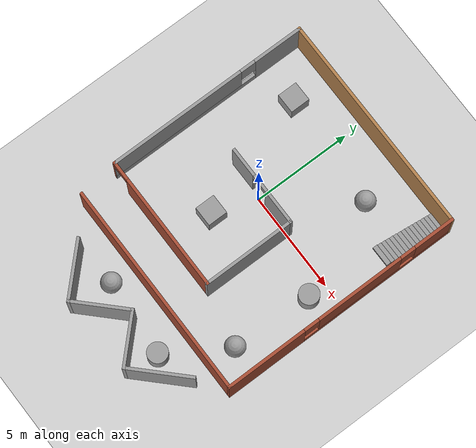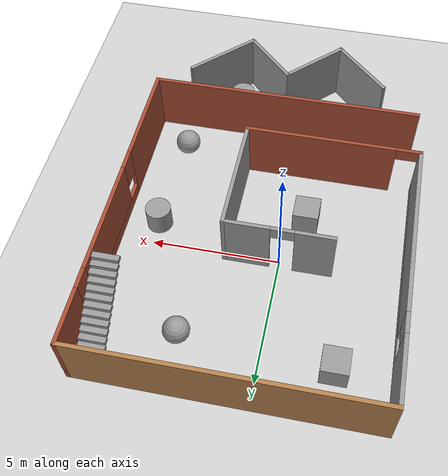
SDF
<sdf version="1.7">
 <world name="default">
  <light name="sun" type="directional">
   <pose>0 0 10 0 -0 0</pose>
   <diffuse>0.8 0.8 0.8 1</diffuse>
   <specular>0.2 0.2 0.2 1</specular>
   <attenuation>
    <range>1000</range>
    <constant>0.9</constant>
    <linear>0.01</linear>
    <quadratic>0.001</quadratic>
   </attenuation>
   <direction>-0.5 0.1 -0.9</direction>
   <spot><inner_angle>0</inner_angle><outer_angle>0</outer_angle><falloff>0</falloff></spot>
  </light>
  <model name="ground_plane">
   <static>1</static>
   <link name="link">
    <collision name="collision">
     <geometry><plane><normal>0 0 1</normal><size>100 100</size></plane></geometry>
     <surface>
      <contact><collide_bitmask>65535</collide_bitmask></contact>
      <friction><ode><mu>100</mu><mu2>50</mu2></ode></friction>
     </surface>
    </collision>
    <visual name="visual">
     <cast_shadows>0</cast_shadows>
     <geometry><plane><normal>0 0 1</normal><size>100 100</size></plane></geometry>
     <material>
      <script><uri>file://media/materials/scripts/gazebo.material</uri><name>Gazebo/Grey</name></script>
     </material>
    </visual>
   </link>
  </model>
  <gravity>0 0 -9.8</gravity>
  <magnetic_field>6e-06 2.3e-05 -4.2e-05</magnetic_field>
  <atmosphere type="adiabatic"/>
  <physics type="ode">
   <max_step_size>0.001</max_step_size>
   <real_time_factor>1</real_time_factor>
   <real_time_update_rate>1000</real_time_update_rate>
  </physics>
  <scene><ambient>0.4 0.4 0.4 1</ambient><background>0.7 0.7 0.7 1</background><shadows>1</shadows></scene>
  <spherical_coordinates>
   <surface_model>EARTH_WGS84</surface_model>
   <latitude_deg>0</latitude_deg>
   <longitude_deg>0</longitude_deg>
   <elevation>0</elevation>
   <heading_deg>0</heading_deg>
  </spherical_coordinates>
  <model name="room2">
   <pose>0.81 -1.94942 0 0 -0 0</pose>
   <link name="Stairs_0">
    <visual name="Stairs_0_Visual_0">
     <pose>4.94342 7.65865 0.083333 0 -0 0</pose>
     <geometry><box><size>1 0.233333 0.166667</size></box></geometry>
     <material>
      <script><uri>file://media/materials/scripts/gazebo.material</uri><name>Gazebo/Grey</name></script>
      <ambient>1 1 1 1</ambient>
     </material>
     <meta><layer>0</layer></meta>
    </visual>
    <collision name="Stairs_0_Collision_0">
     <geometry><box><size>1 0.233333 0.166667</size></box></geometry>
     <pose>4.94342 7.65865 0.083333 0 -0 0</pose>
    </collision>
    <visual name="Stairs_0_Visual_1">
     <pose>4.94342 7.42532 0.25 0 -0 0</pose>
     <geometry><box><size>1 0.233333 0.166667</size></box></geometry>
     <material>
      <script><uri>file://media/materials/scripts/gazebo.material</uri><name>Gazebo/Grey</name></script>
      <ambient>1 1 1 1</ambient>
     </material>
     <meta><layer>0</layer></meta>
    </visual>
    <collision name="Stairs_0_Collision_1">
     <geometry><box><size>1 0.233333 0.166667</size></box></geometry>
     <pose>4.94342 7.42532 0.25 0 -0 0</pose>
    </collision>
    <visual name="Stairs_0_Visual_2">
     <pose>4.94342 7.19199 0.416667 0 -0 0</pose>
     <geometry><box><size>1 0.233333 0.166667</size></box></geometry>
     <material>
      <script><uri>file://media/materials/scripts/gazebo.material</uri><name>Gazebo/Grey</name></script>
      <ambient>1 1 1 1</ambient>
     </material>
     <meta><layer>0</layer></meta>
    </visual>
    <collision name="Stairs_0_Collision_2">
     <geometry><box><size>1 0.233333 0.166667</size></box></geometry>
     <pose>4.94342 7.19199 0.416667 0 -0 0</pose>
    </collision>
    <visual name="Stairs_0_Visual_3">
     <pose>4.94342 6.95865 0.583333 0 -0 0</pose>
     <geometry><box><size>1 0.233333 0.166667</size></box></geometry>
     <material>
      <script><uri>file://media/materials/scripts/gazebo.material</uri><name>Gazebo/Grey</name></script>
      <ambient>1 1 1 1</ambient>
     </material>
     <meta><layer>0</layer></meta>
    </visual>
    <collision name="Stairs_0_Collision_3">
     <geometry><box><size>1 0.233333 0.166667</size></box></geometry>
     <pose>4.94342 6.95865 0.583333 0 -0 0</pose>
    </collision>
    <visual name="Stairs_0_Visual_4">
     <pose>4.94342 6.72532 0.75 0 -0 0</pose>
     <geometry><box><size>1 0.233333 0.166667</size></box></geometry>
     <material>
      <script><uri>file://media/materials/scripts/gazebo.material</uri><name>Gazebo/Grey</name></script>
      <ambient>1 1 1 1</ambient>
     </material>
     <meta><layer>0</layer></meta>
    </visual>
    <collision name="Stairs_0_Collision_4">
     <geometry><box><size>1 0.233333 0.166667</size></box></geometry>
     <pose>4.94342 6.72532 0.75 0 -0 0</pose>
    </collision>
    <visual name="Stairs_0_Visual_5">
     <pose>4.94342 6.49199 0.916667 0 -0 0</pose>
     <geometry><box><size>1 0.233333 0.166667</size></box></geometry>
     <material>
      <script><uri>file://media/materials/scripts/gazebo.material</uri><name>Gazebo/Grey</name></script>
      <ambient>1 1 1 1</ambient>
     </material>
     <meta><layer>0</layer></meta>
    </visual>
    <collision name="Stairs_0_Collision_5">
     <geometry><box><size>1 0.233333 0.166667</size></box></geometry>
     <pose>4.94342 6.49199 0.916667 0 -0 0</pose>
    </collision>
    <visual name="Stairs_0_Visual_6">
     <pose>4.94342 6.25865 1.08333 0 -0 0</pose>
     <geometry><box><size>1 0.233333 0.166667</size></box></geometry>
     <material>
      <script><uri>file://media/materials/scripts/gazebo.material</uri><name>Gazebo/Grey</name></script>
      <ambient>1 1 1 1</ambient>
     </material>
     <meta><layer>0</layer></meta>
    </visual>
    <collision name="Stairs_0_Collision_6">
     <geometry><box><size>1 0.233333 0.166667</size></box></geometry>
     <pose>4.94342 6.25865 1.08333 0 -0 0</pose>
    </collision>
    <visual name="Stairs_0_Visual_7">
     <pose>4.94342 6.02532 1.25 0 -0 0</pose>
     <geometry><box><size>1 0.233333 0.166667</size></box></geometry>
     <material>
      <script><uri>file://media/materials/scripts/gazebo.material</uri><name>Gazebo/Grey</name></script>
      <ambient>1 1 1 1</ambient>
     </material>
     <meta><layer>0</layer></meta>
    </visual>
    <collision name="Stairs_0_Collision_7">
     <geometry><box><size>1 0.233333 0.166667</size></box></geometry>
     <pose>4.94342 6.02532 1.25 0 -0 0</pose>
    </collision>
    <visual name="Stairs_0_Visual_8">
     <pose>4.94342 5.79199 1.41667 0 -0 0</pose>
     <geometry><box><size>1 0.233333 0.166667</size></box></geometry>
     <material>
      <script><uri>file://media/materials/scripts/gazebo.material</uri><name>Gazebo/Grey</name></script>
      <ambient>1 1 1 1</ambient>
     </material>
     <meta><layer>0</layer></meta>
    </visual>
    <collision name="Stairs_0_Collision_8">
     <geometry><box><size>1 0.233333 0.166667</size></box></geometry>
     <pose>4.94342 5.79199 1.41667 0 -0 0</pose>
    </collision>
    <visual name="Stairs_0_Visual_9">
     <pose>4.94342 5.55865 1.58333 0 -0 0</pose>
     <geometry><box><size>1 0.233333 0.166667</size></box></geometry>
     <material>
      <script><uri>file://media/materials/scripts/gazebo.material</uri><name>Gazebo/Grey</name></script>
      <ambient>1 1 1 1</ambient>
     </material>
     <meta><layer>0</layer></meta>
    </visual>
    <collision name="Stairs_0_Collision_9">
     <geometry><box><size>1 0.233333 0.166667</size></box></geometry>
     <pose>4.94342 5.55865 1.58333 0 -0 0</pose>
    </collision>
    <visual name="Stairs_0_Visual_10">
     <pose>4.94342 5.32532 1.75 0 -0 0</pose>
     <geometry><box><size>1 0.233333 0.166667</size></box></geometry>
     <material>
      <script><uri>file://media/materials/scripts/gazebo.material</uri><name>Gazebo/Grey</name></script>
      <ambient>1 1 1 1</ambient>
     </material>
     <meta><layer>0</layer></meta>
    </visual>
    <collision name="Stairs_0_Collision_10">
     <geometry><box><size>1 0.233333 0.166667</size></box></geometry>
     <pose>4.94342 5.32532 1.75 0 -0 0</pose>
    </collision>
    <visual name="Stairs_0_Visual_11">
     <pose>4.94342 5.09199 1.91667 0 -0 0</pose>
     <geometry><box><size>1 0.233333 0.166667</size></box></geometry>
     <material>
      <script><uri>file://media/materials/scripts/gazebo.material</uri><name>Gazebo/Grey</name></script>
      <ambient>1 1 1 1</ambient>
     </material>
     <meta><layer>0</layer></meta>
    </visual>
    <collision name="Stairs_0_Collision_11">
     <geometry><box><size>1 0.233333 0.166667</size></box></geometry>
     <pose>4.94342 5.09199 1.91667 0 -0 0</pose>
    </collision>
    <visual name="Stairs_0_Visual_12">
     <pose>4.94342 4.85865 2.08333 0 -0 0</pose>
     <geometry><box><size>1 0.233333 0.166667</size></box></geometry>
     <material>
      <script><uri>file://media/materials/scripts/gazebo.material</uri><name>Gazebo/Grey</name></script>
      <ambient>1 1 1 1</ambient>
     </material>
     <meta><layer>0</layer></meta>
    </visual>
    <collision name="Stairs_0_Collision_12">
     <geometry><box><size>1 0.233333 0.166667</size></box></geometry>
     <pose>4.94342 4.85865 2.08333 0 -0 0</pose>
    </collision>
    <visual name="Stairs_0_Visual_13">
     <pose>4.94342 4.62532 2.25 0 -0 0</pose>
     <geometry><box><size>1 0.233333 0.166667</size></box></geometry>
     <material>
      <script><uri>file://media/materials/scripts/gazebo.material</uri><name>Gazebo/Grey</name></script>
      <ambient>1 1 1 1</ambient>
     </material>
     <meta><layer>0</layer></meta>
    </visual>
    <collision name="Stairs_0_Collision_13">
     <geometry><box><size>1 0.233333 0.166667</size></box></geometry>
     <pose>4.94342 4.62532 2.25 0 -0 0</pose>
    </collision>
    <visual name="Stairs_0_Visual_14">
     <pose>4.94342 4.39199 2.41667 0 -0 0</pose>
     <geometry><box><size>1 0.233333 0.166667</size></box></geometry>
     <material>
      <script><uri>file://media/materials/scripts/gazebo.material</uri><name>Gazebo/Grey</name></script>
      <ambient>1 1 1 1</ambient>
     </material>
     <meta><layer>0</layer></meta>
    </visual>
    <collision name="Stairs_0_Collision_14">
     <geometry><box><size>1 0.233333 0.166667</size></box></geometry>
     <pose>4.94342 4.39199 2.41667 0 -0 0</pose>
    </collision>
   </link>
   <link name="Wall_11">
    <collision name="Wall_11_Collision">
     <geometry><box><size>3 0.15 2.5</size></box></geometry>
     <pose>0 0 1.25 0 -0 0</pose>
    </collision>
    <visual name="Wall_11_Visual">
     <pose>0 0 1.25 0 -0 0</pose>
     <geometry><box><size>3 0.15 2.5</size></box></geometry>
     <material>
      <script><uri>file://media/materials/scripts/gazebo.material</uri><name>Gazebo/Grey</name></script>
      <ambient>1 1 1 1</ambient>
     </material>
     <meta><layer>0</layer></meta>
    </visual>
    <pose>-2.76716 -6.82073 0 0 -0 -0.785398</pose>
   </link>
   <link name="Wall_12">
    <collision name="Wall_12_Collision">
     <geometry><box><size>3 0.15 2.5</size></box></geometry>
     <pose>0 0 1.25 0 -0 0</pose>
    </collision>
    <visual name="Wall_12_Visual">
     <pose>0 0 1.25 0 -0 0</pose>
     <geometry><box><size>3 0.15 2.5</size></box></geometry>
     <material>
      <script><uri>file://media/materials/scripts/gazebo.material</uri><name>Gazebo/Grey</name></script>
      <ambient>1 1 1 1</ambient>
     </material>
     <meta><layer>0</layer></meta>
    </visual>
    <pose>-0.75191 -6.82073 0 0 -0 0.785398</pose>
   </link>
   <link name="Wall_13">
    <collision name="Wall_13_Collision">
     <geometry><box><size>2.75 0.15 2.5</size></box></geometry>
     <pose>0 0 1.25 0 -0 0</pose>
    </collision>
    <visual name="Wall_13_Visual">
     <pose>0 0 1.25 0 -0 0</pose>
     <geometry><box><size>2.75 0.15 2.5</size></box></geometry>
     <material>
      <script><uri>file://media/materials/scripts/gazebo.material</uri><name>Gazebo/Grey</name></script>
      <ambient>1 1 1 1</ambient>
     </material>
     <meta><layer>0</layer></meta>
    </visual>
    <pose>1.17496 -6.73234 0 0 -0 -0.785398</pose>
   </link>
   <link name="Wall_14">
    <collision name="Wall_14_Collision">
     <geometry><box><size>3.25 0.15 2.5</size></box></geometry>
     <pose>0 0 1.25 0 -0 0</pose>
    </collision>
    <visual name="Wall_14_Visual">
     <pose>0 0 1.25 0 -0 0</pose>
     <geometry><box><size>3.25 0.15 2.5</size></box></geometry>
     <material>
      <script><uri>file://media/materials/scripts/gazebo.material</uri><name>Gazebo/Grey</name></script>
      <ambient>1 1 1 1</ambient>
     </material>
     <meta><layer>0</layer></meta>
    </visual>
    <pose>3.19021 -6.55556 0 0 -0 0.785398</pose>
   </link>
   <link name="Wall_2">
    <collision name="Wall_2_Collision">
     <geometry><box><size>11 0.15 2.5</size></box></geometry>
     <pose>0 0 1.25 0 -0 0</pose>
    </collision>
    <visual name="Wall_2_Visual">
     <pose>0 0 1.25 0 -0 0</pose>
     <geometry><box><size>11 0.15 2.5</size></box></geometry>
     <material>
      <script><uri>file://media/materials/scripts/gazebo.material</uri><name>Gazebo/Bricks</name></script>
      <ambient>1 1 1 1</ambient>
     </material>
     <meta><layer>0</layer></meta>
    </visual>
    <pose>0.125 -4.49058 0 0 -0 0</pose>
   </link>
   <link name="Wall_3">
    <pose>5.55 1.68442 0 0 -0 1.5708</pose>
    <visual name="Wall_3_Visual_0">
     <pose>-4.15239 0 1.25 0 -0 0</pose>
     <geometry><box><size>4.19522 0.15 2.5</size></box></geometry>
     <material>
      <script><uri>file://media/materials/scripts/gazebo.material</uri><name>Gazebo/Bricks</name></script>
      <ambient>1 1 1 1</ambient>
     </material>
     <meta><layer>0</layer></meta>
    </visual>
    <collision name="Wall_3_Collision_0">
     <geometry><box><size>4.19522 0.15 2.5</size></box></geometry>
     <pose>-4.15239 0 1.25 0 -0 0</pose>
    </collision>
    <visual name="Wall_3_Visual_1">
     <pose>2.09761 0 0.25 0 -0 0</pose>
     <geometry><box><size>8.30479 0.15 0.5</size></box></geometry>
     <material>
      <script><uri>file://media/materials/scripts/gazebo.material</uri><name>Gazebo/Bricks</name></script>
      <ambient>1 1 1 1</ambient>
     </material>
     <meta><layer>0</layer></meta>
    </visual>
    <collision name="Wall_3_Collision_1">
     <geometry><box><size>8.30479 0.15 0.5</size></box></geometry>
     <pose>2.09761 0 0.25 0 -0 0</pose>
    </collision>
    <visual name="Wall_3_Visual_2">
     <pose>1.02186 0 1.5 0 -0 0</pose>
     <geometry><box><size>4.55329 0.15 2</size></box></geometry>
     <material>
      <script><uri>file://media/materials/scripts/gazebo.material</uri><name>Gazebo/Bricks</name></script>
      <ambient>1 1 1 1</ambient>
     </material>
     <meta><layer>0</layer></meta>
    </visual>
    <collision name="Wall_3_Collision_2">
     <geometry><box><size>4.55329 0.15 2</size></box></geometry>
     <pose>1.02186 0 1.5 0 -0 0</pose>
    </collision>
    <visual name="Wall_3_Visual_3">
     <pose>5.17425 0 1.5 0 -0 0</pose>
     <geometry><box><size>2.1515 0.15 2</size></box></geometry>
     <material>
      <script><uri>file://media/materials/scripts/gazebo.material</uri><name>Gazebo/Bricks</name></script>
      <ambient>1 1 1 1</ambient>
     </material>
     <meta><layer>0</layer></meta>
    </visual>
    <collision name="Wall_3_Collision_3">
     <geometry><box><size>2.1515 0.15 2</size></box></geometry>
     <pose>5.17425 0 1.5 0 -0 0</pose>
    </collision>
    <visual name="Wall_3_Visual_4">
     <pose>-1.65478 0 1.9 0 -0 0</pose>
     <geometry><box><size>0.8 0.15 1.2</size></box></geometry>
     <material>
      <script><uri>file://media/materials/scripts/gazebo.material</uri><name>Gazebo/Bricks</name></script>
      <ambient>1 1 1 1</ambient>
     </material>
     <meta><layer>0</layer></meta>
    </visual>
    <collision name="Wall_3_Collision_4">
     <geometry><box><size>0.8 0.15 1.2</size></box></geometry>
     <pose>-1.65478 0 1.9 0 -0 0</pose>
    </collision>
    <visual name="Wall_3_Visual_5">
     <pose>3.6985 0 1.9 0 -0 0</pose>
     <geometry><box><size>0.8 0.15 1.2</size></box></geometry>
     <material>
      <script><uri>file://media/materials/scripts/gazebo.material</uri><name>Gazebo/Bricks</name></script>
      <ambient>1 1 1 1</ambient>
     </material>
     <meta><layer>0</layer></meta>
    </visual>
    <collision name="Wall_3_Collision_5">
     <geometry><box><size>0.8 0.15 1.2</size></box></geometry>
     <pose>3.6985 0 1.9 0 -0 0</pose>
    </collision>
   </link>
   <link name="Wall_4">
    <collision name="Wall_4_Collision">
     <geometry><box><size>11.25 0.15 2.5</size></box></geometry>
     <pose>0 0 1.25 0 -0 0</pose>
    </collision>
    <visual name="Wall_4_Visual">
     <pose>0 0 1.25 0 -0 0</pose>
     <geometry><box><size>11.25 0.15 2.5</size></box></geometry>
     <material>
      <script><uri>file://media/materials/scripts/gazebo.material</uri><name>Gazebo/Wood</name></script>
      <ambient>1 1 1 1</ambient>
     </material>
     <meta><layer>0</layer></meta>
    </visual>
    <pose>-0 7.85942 0 0 -0 3.14159</pose>
   </link>
   <link name="Wall_5">
    <pose>-5.55 2.68442 0 0 -0 -1.5708</pose>
    <visual name="Wall_5_Visual_0">
     <pose>-3.94483 0 1.25 0 -0 0</pose>
     <geometry><box><size>2.61035 0.15 2.5</size></box></geometry>
     <material>
      <script><uri>file://media/materials/scripts/gazebo.material</uri><name>Gazebo/Grey</name></script>
      <ambient>1 1 1 1</ambient>
     </material>
     <meta><layer>0</layer></meta>
    </visual>
    <collision name="Wall_5_Collision_0">
     <geometry><box><size>2.61035 0.15 2.5</size></box></geometry>
     <pose>-3.94483 0 1.25 0 -0 0</pose>
    </collision>
    <visual name="Wall_5_Visual_1">
     <pose>1.30517 0 0.25 0 -0 0</pose>
     <geometry><box><size>7.88965 0.15 0.5</size></box></geometry>
     <material>
      <script><uri>file://media/materials/scripts/gazebo.material</uri><name>Gazebo/Grey</name></script>
      <ambient>1 1 1 1</ambient>
     </material>
     <meta><layer>0</layer></meta>
    </visual>
    <collision name="Wall_5_Collision_1">
     <geometry><box><size>7.88965 0.15 0.5</size></box></geometry>
     <pose>1.30517 0 0.25 0 -0 0</pose>
    </collision>
    <visual name="Wall_5_Visual_2">
     <pose>1.70517 0 1.5 0 -0 0</pose>
     <geometry><box><size>7.08965 0.15 2</size></box></geometry>
     <material>
      <script><uri>file://media/materials/scripts/gazebo.material</uri><name>Gazebo/Grey</name></script>
      <ambient>1 1 1 1</ambient>
     </material>
     <meta><layer>0</layer></meta>
    </visual>
    <collision name="Wall_5_Collision_2">
     <geometry><box><size>7.08965 0.15 2</size></box></geometry>
     <pose>1.70517 0 1.5 0 -0 0</pose>
    </collision>
    <visual name="Wall_5_Visual_3">
     <pose>-2.23965 0 1.9 0 -0 0</pose>
     <geometry><box><size>0.8 0.15 1.2</size></box></geometry>
     <material>
      <script><uri>file://media/materials/scripts/gazebo.material</uri><name>Gazebo/Grey</name></script>
      <ambient>1 1 1 1</ambient>
     </material>
     <meta><layer>0</layer></meta>
    </visual>
    <collision name="Wall_5_Collision_3">
     <geometry><box><size>0.8 0.15 1.2</size></box></geometry>
     <pose>-2.23965 0 1.9 0 -0 0</pose>
    </collision>
   </link>
   <link name="Wall_6">
    <pose>-2.125 -2.49058 0 0 -0 0</pose>
    <visual name="Wall_6_Visual_0">
     <pose>-3.44229 0 1.25 0 -0 0</pose>
     <geometry><box><size>0.11542 0.15 2.5</size></box></geometry>
     <material>
      <script><uri>file://media/materials/scripts/gazebo.material</uri><name>Gazebo/Bricks</name></script>
      <ambient>1 1 1 1</ambient>
     </material>
     <meta><layer>0</layer></meta>
    </visual>
    <collision name="Wall_6_Collision_0">
     <geometry><box><size>0.11542 0.15 2.5</size></box></geometry>
     <pose>-3.44229 0 1.25 0 -0 0</pose>
    </collision>
    <visual name="Wall_6_Visual_1">
     <pose>0.50771 0 1.25 0 -0 0</pose>
     <geometry><box><size>5.98458 0.15 2.5</size></box></geometry>
     <material>
      <script><uri>file://media/materials/scripts/gazebo.material</uri><name>Gazebo/Bricks</name></script>
      <ambient>1 1 1 1</ambient>
     </material>
     <meta><layer>0</layer></meta>
    </visual>
    <collision name="Wall_6_Collision_1">
     <geometry><box><size>5.98458 0.15 2.5</size></box></geometry>
     <pose>0.50771 0 1.25 0 -0 0</pose>
    </collision>
    <visual name="Wall_6_Visual_2">
     <pose>-2.93458 0 2.25 0 -0 0</pose>
     <geometry><box><size>0.9 0.15 0.5</size></box></geometry>
     <material>
      <script><uri>file://media/materials/scripts/gazebo.material</uri><name>Gazebo/Bricks</name></script>
      <ambient>1 1 1 1</ambient>
     </material>
     <meta><layer>0</layer></meta>
    </visual>
    <collision name="Wall_6_Collision_2">
     <geometry><box><size>0.9 0.15 0.5</size></box></geometry>
     <pose>-2.93458 0 2.25 0 -0 0</pose>
    </collision>
   </link>
   <link name="Wall_7">
    <collision name="Wall_7_Collision">
     <geometry><box><size>4.75 0.15 2.5</size></box></geometry>
     <pose>0 0 1.25 0 -0 0</pose>
    </collision>
    <visual name="Wall_7_Visual">
     <pose>0 0 1.25 0 -0 0</pose>
     <geometry><box><size>4.75 0.15 2.5</size></box></geometry>
     <material>
      <script><uri>file://media/materials/scripts/gazebo.material</uri><name>Gazebo/Grey</name></script>
      <ambient>1 1 1 1</ambient>
     </material>
     <meta><layer>0</layer></meta>
    </visual>
    <pose>1.3 -0.190581 0 0 -0 1.5708</pose>
   </link>
   <link name="Wall_8">
    <pose>-0.75 2.10942 0 0 -0 3.14159</pose>
    <visual name="Wall_8_Visual_0">
     <pose>-1.21284 0 1.25 0 -0 0</pose>
     <geometry><box><size>1.82431 0.15 2.5</size></box></geometry>
     <material>
      <script><uri>file://media/materials/scripts/gazebo.material</uri><name>Gazebo/Grey</name></script>
      <ambient>1 1 1 1</ambient>
     </material>
     <meta><layer>0</layer></meta>
    </visual>
    <collision name="Wall_8_Collision_0">
     <geometry><box><size>1.82431 0.15 2.5</size></box></geometry>
     <pose>-1.21284 0 1.25 0 -0 0</pose>
    </collision>
    <visual name="Wall_8_Visual_1">
     <pose>1.36216 0 1.25 0 -0 0</pose>
     <geometry><box><size>1.52569 0.15 2.5</size></box></geometry>
     <material>
      <script><uri>file://media/materials/scripts/gazebo.material</uri><name>Gazebo/Grey</name></script>
      <ambient>1 1 1 1</ambient>
     </material>
     <meta><layer>0</layer></meta>
    </visual>
    <collision name="Wall_8_Collision_1">
     <geometry><box><size>1.52569 0.15 2.5</size></box></geometry>
     <pose>1.36216 0 1.25 0 -0 0</pose>
    </collision>
    <visual name="Wall_8_Visual_2">
     <pose>0.149309 0 2.25 0 -0 0</pose>
     <geometry><box><size>0.9 0.15 0.5</size></box></geometry>
     <material>
      <script><uri>file://media/materials/scripts/gazebo.material</uri><name>Gazebo/Grey</name></script>
      <ambient>1 1 1 1</ambient>
     </material>
     <meta><layer>0</layer></meta>
    </visual>
    <collision name="Wall_8_Collision_2">
     <geometry><box><size>0.9 0.15 0.5</size></box></geometry>
     <pose>0.149309 0 2.25 0 -0 0</pose>
    </collision>
   </link>
   <static>1</static>
  </model>
  <model name="unit_sphere">
   <pose>3.05854 3.74886 0.5 0 -0 0</pose>
   <link name="link">
    <inertial>
     <mass>1</mass>
     <inertia><ixx>0.1</ixx><ixy>0</ixy><ixz>0</ixz><iyy>0.1</iyy><iyz>0</iyz><izz>0.1</izz></inertia>
    </inertial>
    <collision name="collision"><geometry><sphere><radius>0.5</radius></sphere></geometry></collision>
    <visual name="visual">
     <geometry><sphere><radius>0.5</radius></sphere></geometry>
     <material>
      <script><name>Gazebo/Grey</name><uri>file://media/materials/scripts/gazebo.material</uri></script>
     </material>
    </visual>
   </link>
  </model>
  <model name="unit_cylinder">
   <pose>4.99406 -0.963097 0.499998 3e-06 -4e-06 0</pose>
   <link name="link">
    <inertial>
     <mass>1</mass>
     <inertia><ixx>0.145833</ixx><ixy>0</ixy><ixz>0</ixz><iyy>0.145833</iyy><iyz>0</iyz><izz>0.125</izz></inertia>
    </inertial>
    <collision name="collision">
     <geometry><cylinder><radius>0.5</radius><length>1</length></cylinder></geometry>
    </collision>
    <visual name="visual">
     <geometry><cylinder><radius>0.5</radius><length>1</length></cylinder></geometry>
     <material>
      <script><name>Gazebo/Grey</name><uri>file://media/materials/scripts/gazebo.material</uri></script>
     </material>
    </visual>
   </link>
  </model>
  <model name="unit_box">
   <pose>-0.714525 -2.12479 0.499995 0 1e-05 0</pose>
   <link name="link">
    <inertial>
     <mass>1</mass>
     <inertia>
      <ixx>0.166667</ixx>
      <ixy>0</ixy>
      <ixz>0</ixz>
      <iyy>0.166667</iyy>
      <iyz>0</iyz>
      <izz>0.166667</izz>
     </inertia>
    </inertial>
    <collision name="collision"><geometry><box><size>1 1 1</size></box></geometry></collision>
    <visual name="visual">
     <geometry><box><size>1 1 1</size></box></geometry>
     <material>
      <script><name>Gazebo/Grey</name><uri>file://media/materials/scripts/gazebo.material</uri></script>
     </material>
    </visual>
   </link>
  </model>
  <model name="unit_box_0">
   <pose>-2.65964 4.03494 0.499995 -1e-05 -0 -0</pose>
   <link name="link">
    <inertial>
     <mass>1</mass>
     <inertia>
      <ixx>0.166667</ixx>
      <ixy>0</ixy>
      <ixz>0</ixz>
      <iyy>0.166667</iyy>
      <iyz>0</iyz>
      <izz>0.166667</izz>
     </inertia>
    </inertial>
    <collision name="collision"><geometry><box><size>1 1 1</size></box></geometry></collision>
    <visual name="visual">
     <geometry><box><size>1 1 1</size></box></geometry>
     <material>
      <script><name>Gazebo/Grey</name><uri>file://media/materials/scripts/gazebo.material</uri></script>
     </material>
    </visual>
   </link>
  </model>
  <model name="unit_sphere_0">
   <pose>4.81306 -4.96568 0.5 0 -0 0</pose>
   <link name="link">
    <inertial>
     <mass>1</mass>
     <inertia><ixx>0.1</ixx><ixy>0</ixy><ixz>0</ixz><iyy>0.1</iyy><iyz>0</iyz><izz>0.1</izz></inertia>
    </inertial>
    <collision name="collision"><geometry><sphere><radius>0.5</radius></sphere></geometry></collision>
    <visual name="visual">
     <geometry><sphere><radius>0.5</radius></sphere></geometry>
     <material>
      <script><name>Gazebo/Grey</name><uri>file://media/materials/scripts/gazebo.material</uri></script>
     </material>
    </visual>
   </link>
  </model>
  <model name="unit_cylinder_0">
   <pose>3.01819 -7.92182 0.499993 -3e-06 -4e-06 -0</pose>
   <link name="link">
    <inertial>
     <mass>1</mass>
     <inertia><ixx>0.145833</ixx><ixy>0</ixy><ixz>0</ixz><iyy>0.145833</iyy><iyz>0</iyz><izz>0.125</izz></inertia>
    </inertial>
    <collision name="collision">
     <geometry><cylinder><radius>0.5</radius><length>1</length></cylinder></geometry>
    </collision>
    <visual name="visual">
     <geometry><cylinder><radius>0.5</radius><length>1</length></cylinder></geometry>
     <material>
      <script><name>Gazebo/Grey</name><uri>file://media/materials/scripts/gazebo.material</uri></script>
     </material>
    </visual>
   </link>
  </model>
  <model name="unit_sphere_1">
   <pose>-0.863972 -7.6365 0.5 0 -0 0</pose>
   <link name="link">
    <inertial>
     <mass>1</mass>
     <inertia><ixx>0.1</ixx><ixy>0</ixy><ixz>0</ixz><iyy>0.1</iyy><iyz>0</iyz><izz>0.1</izz></inertia>
    </inertial>
    <collision name="collision"><geometry><sphere><radius>0.5</radius></sphere></geometry></collision>
    <visual name="visual">
     <geometry><sphere><radius>0.5</radius></sphere></geometry>
     <material>
      <script><name>Gazebo/Grey</name><uri>file://media/materials/scripts/gazebo.material</uri></script>
     </material>
    </visual>
   </link>
  </model>
 </world>
</sdf>
